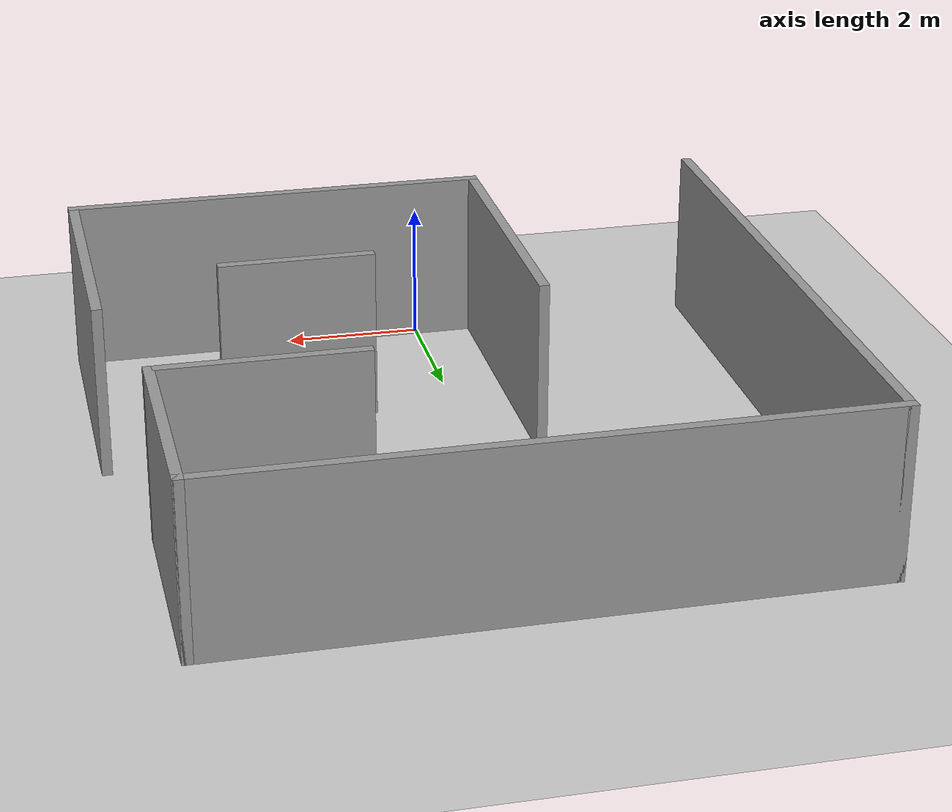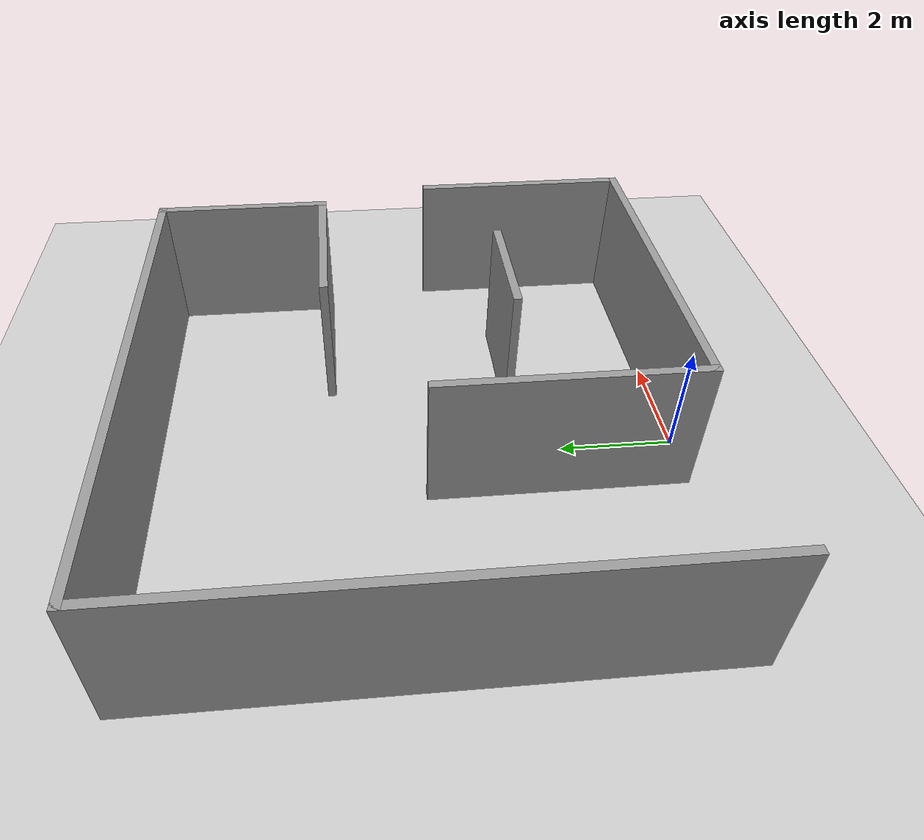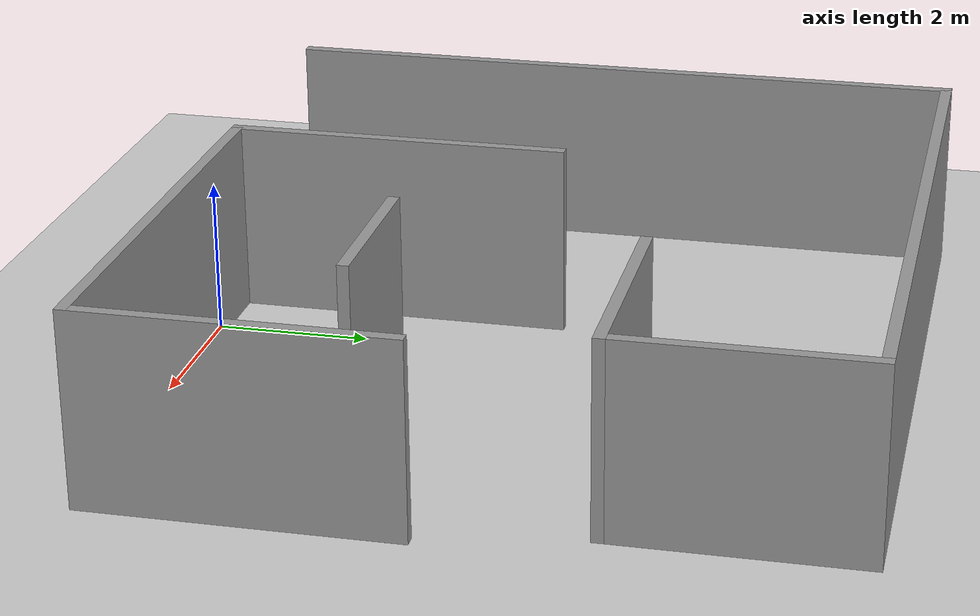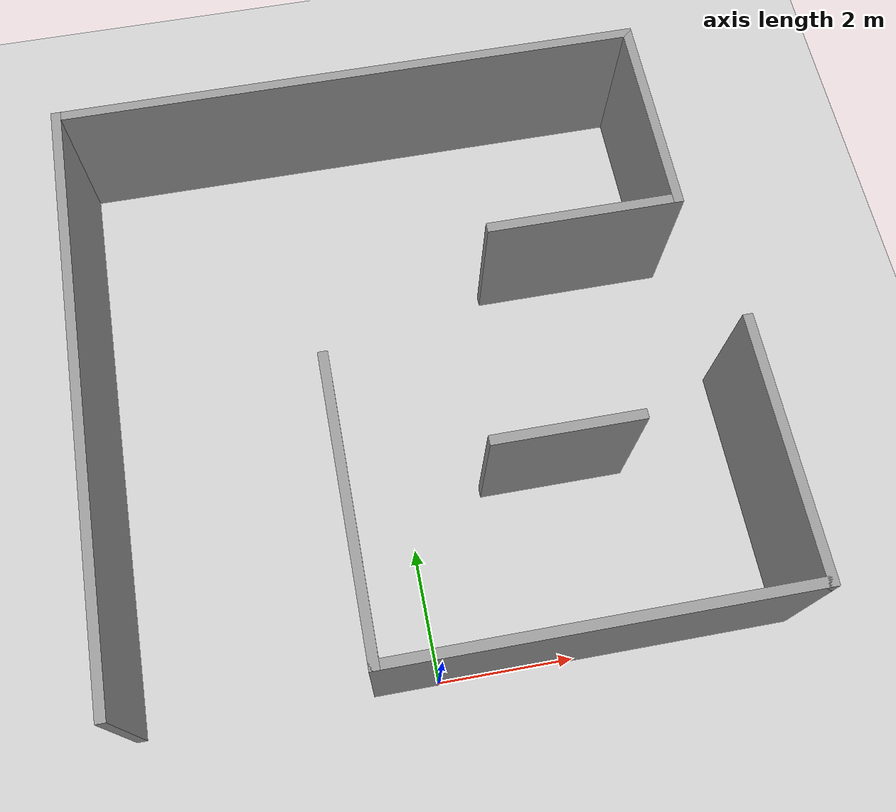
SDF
<sdf version="1.7">
 <world name="default">
  <light name="sun" type="directional">
   <pose>0 0 10 0 -0 0</pose>
   <diffuse>0.8 0.8 0.8 1</diffuse>
   <specular>0.2 0.2 0.2 1</specular>
   <attenuation>
    <range>1000</range>
    <constant>0.9</constant>
    <linear>0.01</linear>
    <quadratic>0.001</quadratic>
   </attenuation>
   <direction>-0.5 0.1 -0.9</direction>
   <spot><inner_angle>0</inner_angle><outer_angle>0</outer_angle><falloff>0</falloff></spot>
  </light>
  <model name="ground_plane">
   <static>1</static>
   <link name="link">
    <collision name="collision">
     <geometry><plane><normal>0 0 1</normal><size>100 100</size></plane></geometry>
     <surface>
      <contact><collide_bitmask>65535</collide_bitmask></contact>
      <friction><ode><mu>100</mu><mu2>50</mu2></ode></friction>
     </surface>
    </collision>
    <visual name="visual">
     <cast_shadows>0</cast_shadows>
     <geometry><plane><normal>0 0 1</normal><size>100 100</size></plane></geometry>
     <material>
      <script><uri>file://media/materials/scripts/gazebo.material</uri><name>Gazebo/Grey</name></script>
     </material>
    </visual>
   </link>
  </model>
  <gravity>0 0 -9.8</gravity>
  <magnetic_field>6e-06 2.3e-05 -4.2e-05</magnetic_field>
  <atmosphere type="adiabatic"/>
  <physics type="ode">
   <max_step_size>0.001</max_step_size>
   <real_time_factor>1</real_time_factor>
   <real_time_update_rate>1000</real_time_update_rate>
  </physics>
  <scene><ambient>0.4 0.4 0.4 1</ambient><background>0.7 0.7 0.7 1</background><shadows>1</shadows></scene>
  <spherical_coordinates>
   <surface_model>EARTH_WGS84</surface_model>
   <latitude_deg>0</latitude_deg>
   <longitude_deg>0</longitude_deg>
   <elevation>0</elevation>
   <heading_deg>0</heading_deg>
  </spherical_coordinates>
  <model name="House">
   <pose>0.413155 4.57266 0 0 -0 0</pose>
   <link name="Wall_10">
    <collision name="Wall_10_Collision">
     <geometry><box><size>3.25 0.15 2.5</size></box></geometry>
     <pose>0 0 1.25 0 -0 0</pose>
    </collision>
    <visual name="Wall_10_Visual">
     <pose>0 0 1.25 0 -0 0</pose>
     <geometry><box><size>3.25 0.15 2.5</size></box></geometry>
     <material>
      <script><uri>file://media/materials/scripts/gazebo.material</uri><name>Gazebo/Grey</name></script>
      <ambient>1 1 1 1</ambient>
     </material>
     <meta><layer>0</layer></meta>
    </visual>
    <pose>4.31138 3 0 0 -0 -1.5708</pose>
   </link>
   <link name="Wall_11">
    <collision name="Wall_11_Collision">
     <geometry><box><size>3 0.15 2.5</size></box></geometry>
     <pose>0 0 1.25 0 -0 0</pose>
    </collision>
    <visual name="Wall_11_Visual">
     <pose>0 0 1.25 0 -0 0</pose>
     <geometry><box><size>3 0.15 2.5</size></box></geometry>
     <material>
      <script><uri>file://media/materials/scripts/gazebo.material</uri><name>Gazebo/Grey</name></script>
      <ambient>1 1 1 1</ambient>
     </material>
     <meta><layer>0</layer></meta>
    </visual>
    <pose>2.88638 1.45 0 0 -0 3.14159</pose>
   </link>
   <link name="Wall_13">
    <collision name="Wall_13_Collision">
     <geometry><box><size>4.5 0.15 2.5</size></box></geometry>
     <pose>0 0 1.25 0 -0 0</pose>
    </collision>
    <visual name="Wall_13_Visual">
     <pose>0 0 1.25 0 -0 0</pose>
     <geometry><box><size>4.5 0.15 2.5</size></box></geometry>
     <material>
      <script><uri>file://media/materials/scripts/gazebo.material</uri><name>Gazebo/Grey</name></script>
      <ambient>1 1 1 1</ambient>
     </material>
     <meta><layer>0</layer></meta>
    </visual>
    <pose>-1.31138 -2.34737 0 0 -0 -1.5708</pose>
   </link>
   <link name="Wall_14">
    <collision name="Wall_14_Collision">
     <geometry><box><size>6.25 0.15 2.5</size></box></geometry>
     <pose>0 0 1.25 0 -0 0</pose>
    </collision>
    <visual name="Wall_14_Visual">
     <pose>0 0 1.25 0 -0 0</pose>
     <geometry><box><size>6.25 0.15 2.5</size></box></geometry>
     <material>
      <script><uri>file://media/materials/scripts/gazebo.material</uri><name>Gazebo/Grey</name></script>
      <ambient>1 1 1 1</ambient>
     </material>
     <meta><layer>0</layer></meta>
    </visual>
    <pose>1.73862 -4.52237 0 0 -0 0</pose>
   </link>
   <link name="Wall_15">
    <collision name="Wall_15_Collision">
     <geometry><box><size>4 0.15 2.5</size></box></geometry>
     <pose>0 0 1.25 0 -0 0</pose>
    </collision>
    <visual name="Wall_15_Visual">
     <pose>0 0 1.25 0 -0 0</pose>
     <geometry><box><size>4 0.15 2.5</size></box></geometry>
     <material>
      <script><uri>file://media/materials/scripts/gazebo.material</uri><name>Gazebo/Grey</name></script>
      <ambient>1 1 1 1</ambient>
     </material>
     <meta><layer>0</layer></meta>
    </visual>
    <pose>4.78862 -2.59737 0 0 -0 1.5708</pose>
   </link>
   <link name="Wall_17">
    <collision name="Wall_17_Collision">
     <geometry><box><size>2.25 0.15 2.5</size></box></geometry>
     <pose>0 0 1.25 0 -0 0</pose>
    </collision>
    <visual name="Wall_17_Visual">
     <pose>0 0 1.25 0 -0 0</pose>
     <geometry><box><size>2.25 0.15 2.5</size></box></geometry>
     <material>
      <script><uri>file://media/materials/scripts/gazebo.material</uri><name>Gazebo/Grey</name></script>
      <ambient>1 1 1 1</ambient>
     </material>
     <meta><layer>0</layer></meta>
    </visual>
    <pose>1.87065 -1.82168 0 0 -0 0</pose>
   </link>
   <link name="Wall_8">
    <collision name="Wall_8_Collision">
     <geometry><box><size>9.25 0.15 2.5</size></box></geometry>
     <pose>0 0 1.25 0 -0 0</pose>
    </collision>
    <visual name="Wall_8_Visual">
     <pose>0 0 1.25 0 -0 0</pose>
     <geometry><box><size>9.25 0.15 2.5</size></box></geometry>
     <material>
      <script><uri>file://media/materials/scripts/gazebo.material</uri><name>Gazebo/Grey</name></script>
      <ambient>1 1 1 1</ambient>
     </material>
     <meta><layer>0</layer></meta>
    </visual>
    <pose>-4.78862 0 0 0 -0 1.5708</pose>
   </link>
   <link name="Wall_9">
    <collision name="Wall_9_Collision">
     <geometry><box><size>9.25 0.15 2.5</size></box></geometry>
     <pose>0 0 1.25 0 -0 0</pose>
    </collision>
    <visual name="Wall_9_Visual">
     <pose>0 0 1.25 0 -0 0</pose>
     <geometry><box><size>9.25 0.15 2.5</size></box></geometry>
     <material>
      <script><uri>file://media/materials/scripts/gazebo.material</uri><name>Gazebo/Grey</name></script>
      <ambient>1 1 1 1</ambient>
     </material>
     <meta><layer>0</layer></meta>
    </visual>
    <pose>-0.238616 4.55 0 0 -0 0</pose>
   </link>
   <static>1</static>
  </model>
 </world>
</sdf>
